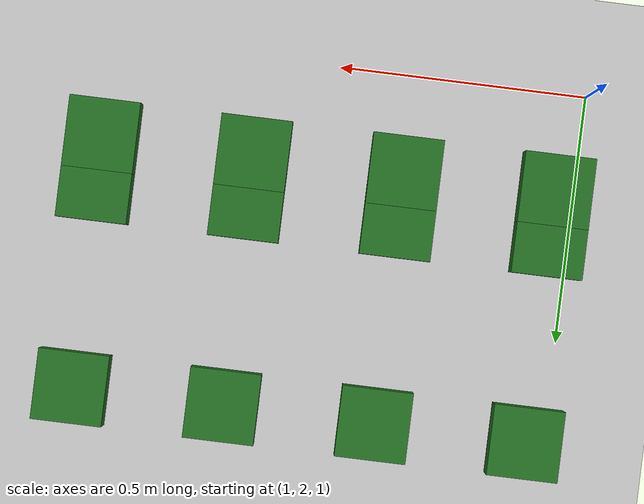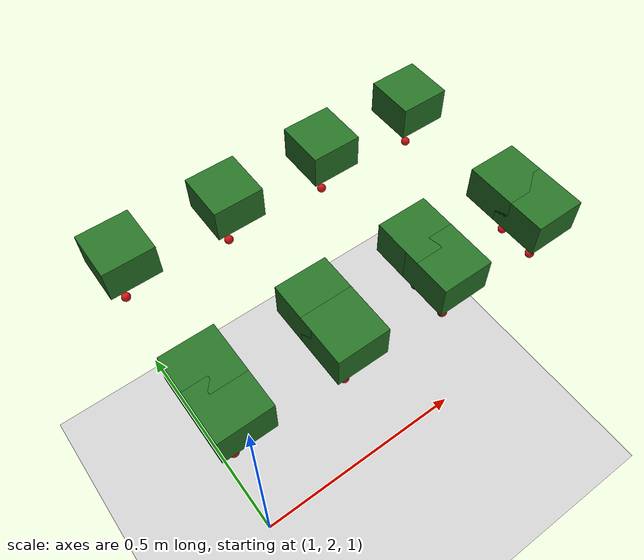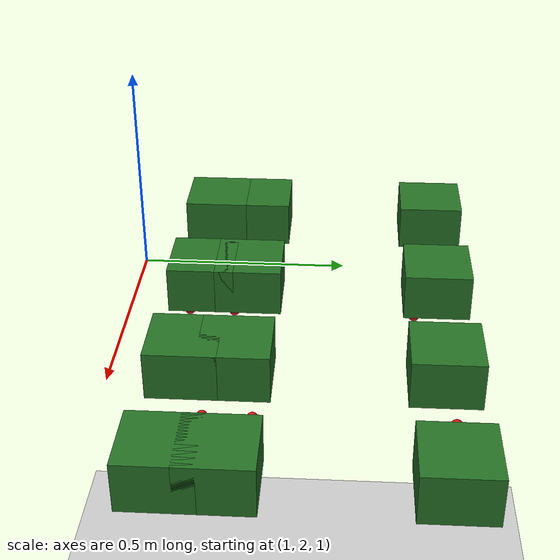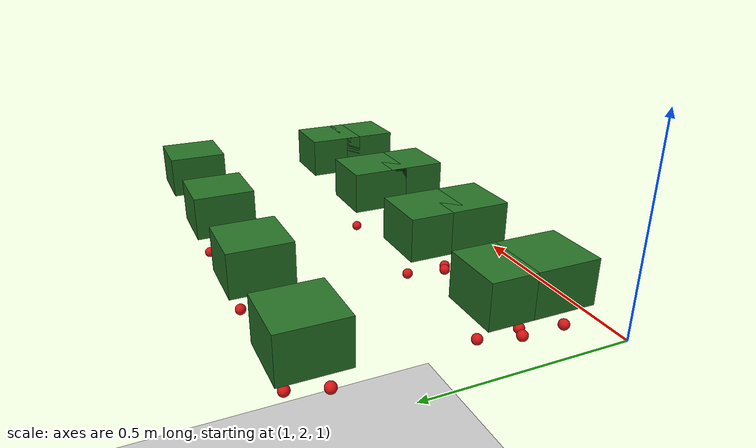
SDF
<sdf version="1.7">
 <world name="irish_polytunnel">
  <include><uri>model://sun</uri></include>
  <include><uri>model://ground_plane</uri></include>
  <model name="row4_L_plant3_foliage">
   <static>true</static>
   <pose>1.050 2.200 1.180 0 0 0</pose>
   <link name="link">
    <visual name="visual">
     <geometry><box><size>0.14 0.14 0.10</size></box></geometry>
     <material><ambient>0.10 0.35 0.10 1</ambient><diffuse>0.15 0.45 0.15 1</diffuse></material>
    </visual>
   </link>
  </model>
  <model name="row4_L_plant3_berry_0">
   <static>true</static>
   <pose>1.020 2.160 1.070 0 0 0</pose>
   <link name="link">
    <visual name="visual">
     <geometry><sphere><radius>0.012</radius></sphere></geometry>
     <material><ambient>0.75 0.05 0.05 1</ambient><diffuse>0.85 0.08 0.08 1</diffuse></material>
    </visual>
   </link>
  </model>
  <model name="row4_L_plant3_berry_1">
   <static>true</static>
   <pose>1.070 2.230 1.050 0 0 0</pose>
   <link name="link">
    <visual name="visual">
     <geometry><sphere><radius>0.012</radius></sphere></geometry>
     <material><ambient>0.75 0.05 0.05 1</ambient><diffuse>0.85 0.08 0.08 1</diffuse></material>
    </visual>
   </link>
  </model>
  <model name="row4_L_plant4_foliage">
   <static>true</static>
   <pose>1.350 2.200 1.180 0 0 0</pose>
   <link name="link">
    <visual name="visual">
     <geometry><box><size>0.14 0.14 0.10</size></box></geometry>
     <material><ambient>0.10 0.35 0.10 1</ambient><diffuse>0.15 0.45 0.15 1</diffuse></material>
    </visual>
   </link>
  </model>
  <model name="row4_L_plant4_berry_0">
   <static>true</static>
   <pose>1.320 2.160 1.070 0 0 0</pose>
   <link name="link">
    <visual name="visual">
     <geometry><sphere><radius>0.012</radius></sphere></geometry>
     <material><ambient>0.75 0.05 0.05 1</ambient><diffuse>0.85 0.08 0.08 1</diffuse></material>
    </visual>
   </link>
  </model>
  <model name="row4_L_plant4_berry_1">
   <static>true</static>
   <pose>1.370 2.230 1.050 0 0 0</pose>
   <link name="link">
    <visual name="visual">
     <geometry><sphere><radius>0.012</radius></sphere></geometry>
     <material><ambient>0.75 0.05 0.05 1</ambient><diffuse>0.85 0.08 0.08 1</diffuse></material>
    </visual>
   </link>
  </model>
  <model name="row4_L_plant5_foliage">
   <static>true</static>
   <pose>1.650 2.200 1.180 0 0 0</pose>
   <link name="link">
    <visual name="visual">
     <geometry><box><size>0.14 0.14 0.10</size></box></geometry>
     <material><ambient>0.10 0.35 0.10 1</ambient><diffuse>0.15 0.45 0.15 1</diffuse></material>
    </visual>
   </link>
  </model>
  <model name="row4_L_plant5_berry_0">
   <static>true</static>
   <pose>1.620 2.160 1.070 0 0 0</pose>
   <link name="link">
    <visual name="visual">
     <geometry><sphere><radius>0.012</radius></sphere></geometry>
     <material><ambient>0.75 0.05 0.05 1</ambient><diffuse>0.85 0.08 0.08 1</diffuse></material>
    </visual>
   </link>
  </model>
  <model name="row4_L_plant5_berry_1">
   <static>true</static>
   <pose>1.670 2.230 1.050 0 0 0</pose>
   <link name="link">
    <visual name="visual">
     <geometry><sphere><radius>0.012</radius></sphere></geometry>
     <material><ambient>0.75 0.05 0.05 1</ambient><diffuse>0.85 0.08 0.08 1</diffuse></material>
    </visual>
   </link>
  </model>
  <model name="row4_L_plant6_foliage">
   <static>true</static>
   <pose>1.950 2.200 1.180 0 0 0</pose>
   <link name="link">
    <visual name="visual">
     <geometry><box><size>0.14 0.14 0.10</size></box></geometry>
     <material><ambient>0.10 0.35 0.10 1</ambient><diffuse>0.15 0.45 0.15 1</diffuse></material>
    </visual>
   </link>
  </model>
  <model name="row4_L_plant6_berry_0">
   <static>true</static>
   <pose>1.920 2.160 1.070 0 0 0</pose>
   <link name="link">
    <visual name="visual">
     <geometry><sphere><radius>0.012</radius></sphere></geometry>
     <material><ambient>0.75 0.05 0.05 1</ambient><diffuse>0.85 0.08 0.08 1</diffuse></material>
    </visual>
   </link>
  </model>
  <model name="row5_L_plant3_foliage">
   <static>true</static>
   <pose>1.050 2.700 1.180 0 0 0</pose>
   <link name="link">
    <visual name="visual">
     <geometry><box><size>0.14 0.14 0.10</size></box></geometry>
     <material><ambient>0.10 0.35 0.10 1</ambient><diffuse>0.15 0.45 0.15 1</diffuse></material>
    </visual>
   </link>
  </model>
  <model name="row5_L_plant3_berry_0">
   <static>true</static>
   <pose>1.020 2.660 1.070 0 0 0</pose>
   <link name="link">
    <visual name="visual">
     <geometry><sphere><radius>0.012</radius></sphere></geometry>
     <material><ambient>0.75 0.05 0.05 1</ambient><diffuse>0.85 0.08 0.08 1</diffuse></material>
    </visual>
   </link>
  </model>
  <model name="row5_L_plant3_berry_1">
   <static>true</static>
   <pose>1.070 2.730 1.050 0 0 0</pose>
   <link name="link">
    <visual name="visual">
     <geometry><sphere><radius>0.012</radius></sphere></geometry>
     <material><ambient>0.75 0.05 0.05 1</ambient><diffuse>0.85 0.08 0.08 1</diffuse></material>
    </visual>
   </link>
  </model>
  <model name="row5_L_plant4_foliage">
   <static>true</static>
   <pose>1.350 2.700 1.180 0 0 0</pose>
   <link name="link">
    <visual name="visual">
     <geometry><box><size>0.14 0.14 0.10</size></box></geometry>
     <material><ambient>0.10 0.35 0.10 1</ambient><diffuse>0.15 0.45 0.15 1</diffuse></material>
    </visual>
   </link>
  </model>
  <model name="row5_L_plant4_berry_0">
   <static>true</static>
   <pose>1.320 2.660 1.070 0 0 0</pose>
   <link name="link">
    <visual name="visual">
     <geometry><sphere><radius>0.012</radius></sphere></geometry>
     <material><ambient>0.75 0.05 0.05 1</ambient><diffuse>0.85 0.08 0.08 1</diffuse></material>
    </visual>
   </link>
  </model>
  <model name="row5_L_plant4_berry_1">
   <static>true</static>
   <pose>1.370 2.730 1.050 0 0 0</pose>
   <link name="link">
    <visual name="visual">
     <geometry><sphere><radius>0.012</radius></sphere></geometry>
     <material><ambient>0.75 0.05 0.05 1</ambient><diffuse>0.85 0.08 0.08 1</diffuse></material>
    </visual>
   </link>
  </model>
  <model name="row5_L_plant5_foliage">
   <static>true</static>
   <pose>1.650 2.700 1.180 0 0 0</pose>
   <link name="link">
    <visual name="visual">
     <geometry><box><size>0.14 0.14 0.10</size></box></geometry>
     <material><ambient>0.10 0.35 0.10 1</ambient><diffuse>0.15 0.45 0.15 1</diffuse></material>
    </visual>
   </link>
  </model>
  <model name="row5_L_plant5_berry_0">
   <static>true</static>
   <pose>1.620 2.660 1.070 0 0 0</pose>
   <link name="link">
    <visual name="visual">
     <geometry><sphere><radius>0.012</radius></sphere></geometry>
     <material><ambient>0.75 0.05 0.05 1</ambient><diffuse>0.85 0.08 0.08 1</diffuse></material>
    </visual>
   </link>
  </model>
  <model name="row5_L_plant5_berry_1">
   <static>true</static>
   <pose>1.670 2.730 1.050 0 0 0</pose>
   <link name="link">
    <visual name="visual">
     <geometry><sphere><radius>0.012</radius></sphere></geometry>
     <material><ambient>0.75 0.05 0.05 1</ambient><diffuse>0.85 0.08 0.08 1</diffuse></material>
    </visual>
   </link>
  </model>
  <model name="row5_L_plant6_foliage">
   <static>true</static>
   <pose>1.950 2.700 1.180 0 0 0</pose>
   <link name="link">
    <visual name="visual">
     <geometry><box><size>0.14 0.14 0.10</size></box></geometry>
     <material><ambient>0.10 0.35 0.10 1</ambient><diffuse>0.15 0.45 0.15 1</diffuse></material>
    </visual>
   </link>
  </model>
  <model name="row5_L_plant6_berry_0">
   <static>true</static>
   <pose>1.920 2.660 1.070 0 0 0</pose>
   <link name="link">
    <visual name="visual">
     <geometry><sphere><radius>0.012</radius></sphere></geometry>
     <material><ambient>0.75 0.05 0.05 1</ambient><diffuse>0.85 0.08 0.08 1</diffuse></material>
    </visual>
   </link>
  </model>
  <model name="row5_R_plant3_foliage">
   <static>true</static>
   <pose>1.050 2.300 1.180 0 0 0</pose>
   <link name="link">
    <visual name="visual">
     <geometry><box><size>0.14 0.14 0.10</size></box></geometry>
     <material><ambient>0.10 0.35 0.10 1</ambient><diffuse>0.15 0.45 0.15 1</diffuse></material>
    </visual>
   </link>
  </model>
  <model name="row5_R_plant3_berry_0">
   <static>true</static>
   <pose>1.020 2.260 1.070 0 0 0</pose>
   <link name="link">
    <visual name="visual">
     <geometry><sphere><radius>0.012</radius></sphere></geometry>
     <material><ambient>0.75 0.05 0.05 1</ambient><diffuse>0.85 0.08 0.08 1</diffuse></material>
    </visual>
   </link>
  </model>
  <model name="row5_R_plant3_berry_1">
   <static>true</static>
   <pose>1.070 2.330 1.050 0 0 0</pose>
   <link name="link">
    <visual name="visual">
     <geometry><sphere><radius>0.012</radius></sphere></geometry>
     <material><ambient>0.75 0.05 0.05 1</ambient><diffuse>0.85 0.08 0.08 1</diffuse></material>
    </visual>
   </link>
  </model>
  <model name="row5_R_plant4_foliage">
   <static>true</static>
   <pose>1.350 2.300 1.180 0 0 0</pose>
   <link name="link">
    <visual name="visual">
     <geometry><box><size>0.14 0.14 0.10</size></box></geometry>
     <material><ambient>0.10 0.35 0.10 1</ambient><diffuse>0.15 0.45 0.15 1</diffuse></material>
    </visual>
   </link>
  </model>
  <model name="row5_R_plant4_berry_0">
   <static>true</static>
   <pose>1.320 2.260 1.070 0 0 0</pose>
   <link name="link">
    <visual name="visual">
     <geometry><sphere><radius>0.012</radius></sphere></geometry>
     <material><ambient>0.75 0.05 0.05 1</ambient><diffuse>0.85 0.08 0.08 1</diffuse></material>
    </visual>
   </link>
  </model>
  <model name="row5_R_plant4_berry_1">
   <static>true</static>
   <pose>1.370 2.330 1.050 0 0 0</pose>
   <link name="link">
    <visual name="visual">
     <geometry><sphere><radius>0.012</radius></sphere></geometry>
     <material><ambient>0.75 0.05 0.05 1</ambient><diffuse>0.85 0.08 0.08 1</diffuse></material>
    </visual>
   </link>
  </model>
  <model name="row5_R_plant5_foliage">
   <static>true</static>
   <pose>1.650 2.300 1.180 0 0 0</pose>
   <link name="link">
    <visual name="visual">
     <geometry><box><size>0.14 0.14 0.10</size></box></geometry>
     <material><ambient>0.10 0.35 0.10 1</ambient><diffuse>0.15 0.45 0.15 1</diffuse></material>
    </visual>
   </link>
  </model>
  <model name="row5_R_plant5_berry_0">
   <static>true</static>
   <pose>1.620 2.260 1.070 0 0 0</pose>
   <link name="link">
    <visual name="visual">
     <geometry><sphere><radius>0.012</radius></sphere></geometry>
     <material><ambient>0.75 0.05 0.05 1</ambient><diffuse>0.85 0.08 0.08 1</diffuse></material>
    </visual>
   </link>
  </model>
  <model name="row5_R_plant5_berry_1">
   <static>true</static>
   <pose>1.670 2.330 1.050 0 0 0</pose>
   <link name="link">
    <visual name="visual">
     <geometry><sphere><radius>0.012</radius></sphere></geometry>
     <material><ambient>0.75 0.05 0.05 1</ambient><diffuse>0.85 0.08 0.08 1</diffuse></material>
    </visual>
   </link>
  </model>
  <model name="row5_R_plant6_foliage">
   <static>true</static>
   <pose>1.950 2.300 1.180 0 0 0</pose>
   <link name="link">
    <visual name="visual">
     <geometry><box><size>0.14 0.14 0.10</size></box></geometry>
     <material><ambient>0.10 0.35 0.10 1</ambient><diffuse>0.15 0.45 0.15 1</diffuse></material>
    </visual>
   </link>
  </model>
  <model name="row5_R_plant6_berry_0">
   <static>true</static>
   <pose>1.920 2.260 1.070 0 0 0</pose>
   <link name="link">
    <visual name="visual">
     <geometry><sphere><radius>0.012</radius></sphere></geometry>
     <material><ambient>0.75 0.05 0.05 1</ambient><diffuse>0.85 0.08 0.08 1</diffuse></material>
    </visual>
   </link>
  </model>
 </world>
</sdf>
